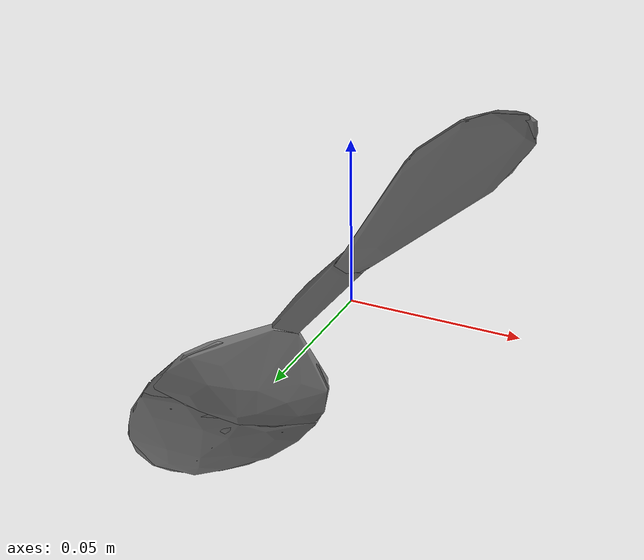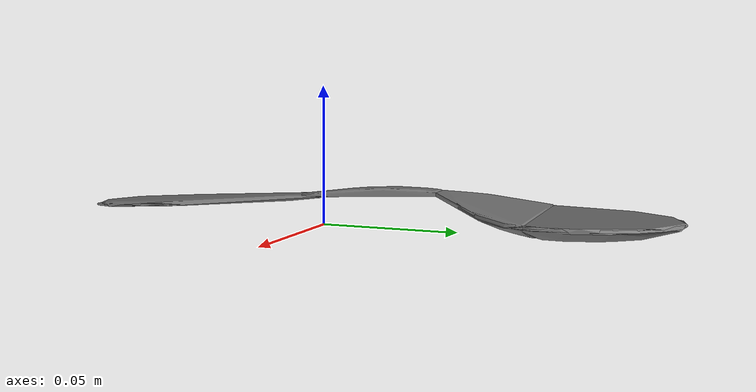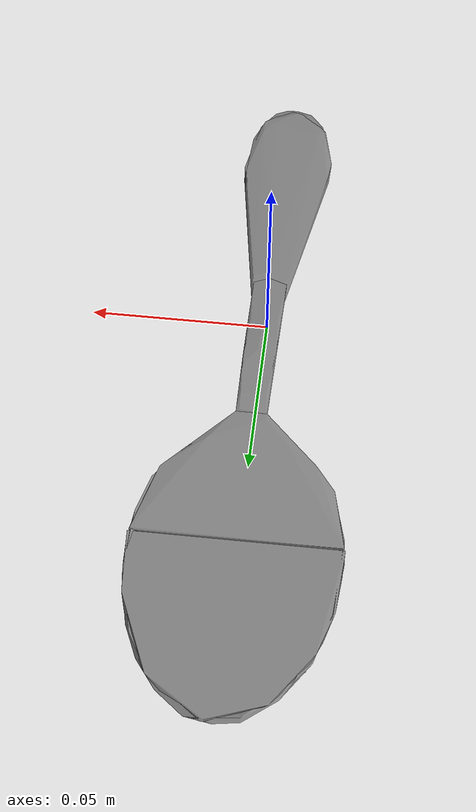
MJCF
<mujoco model="spoon2">
  <asset>
    <mesh file="../../meshes/train/spoon2/simple_mesh.stl" name="spoon2_mesh" scale="1 1 1"/>
    <mesh file="../../meshes/train/spoon2/spoon2_hull_1.stl" name="spoon2_hull_mesh_1" scale="1 1 1"/>
    <mesh file="../../meshes/train/spoon2/spoon2_hull_2.stl" name="spoon2_hull_mesh_2" scale="1 1 1"/>
    <mesh file="../../meshes/train/spoon2/spoon2_hull_3.stl" name="spoon2_hull_mesh_3" scale="1 1 1"/>
    <mesh file="../../meshes/train/spoon2/spoon2_hull_4.stl" name="spoon2_hull_mesh_4" scale="1 1 1"/>
  </asset>
  <worldbody>
    <body>
      <body name="object">
        <geom pos="0 0 0" mesh="spoon2_mesh" type="mesh" contype="0" conaffinity="0" group="1"/>
        <geom pos="0 0 0" mesh="spoon2_hull_mesh_1" type="mesh" margin="0.001" solimp="0.998 0.998 0.001" solref="0.001 1" density="2000" friction="0.95 0.3 0.1" group="0" condim="4"/>
        <geom pos="0 0 0" mesh="spoon2_hull_mesh_2" type="mesh" margin="0.001" solimp="0.998 0.998 0.001" solref="0.001 1" density="2000" friction="0.95 0.3 0.1" group="0" condim="4"/>
        <geom pos="0 0 0" mesh="spoon2_hull_mesh_3" type="mesh" margin="0.001" solimp="0.998 0.998 0.001" solref="0.001 1" density="2000" friction="0.95 0.3 0.1" group="0" condim="4"/>
        <geom pos="0 0 0" mesh="spoon2_hull_mesh_4" type="mesh" margin="0.001" solimp="0.998 0.998 0.001" solref="0.001 1" density="2000" friction="0.95 0.3 0.1" group="0" condim="4"/>
      </body>
      <site rgba="0 0 0 0" size="0.005" pos="0 0 -0.001" name="bottom_site"/>
      <site rgba="0 0 0 0" size="0.005" pos="0 0 0.02" name="top_site"/>
      <site rgba="0 0 0 0" size="0.005" pos="0.0375 0.02 0" name="horizontal_radius_site"/>
    </body>
  </worldbody>
</mujoco>
